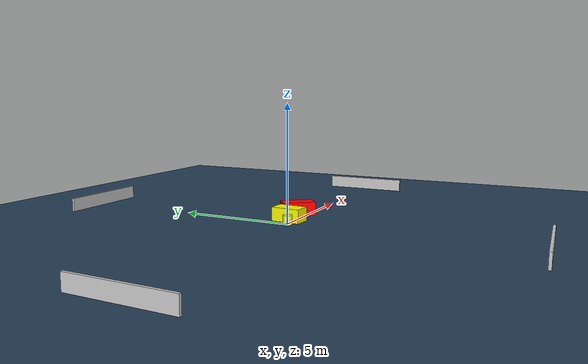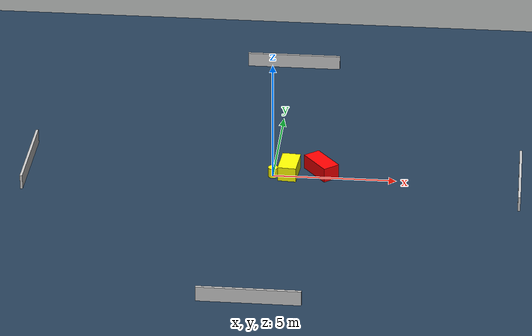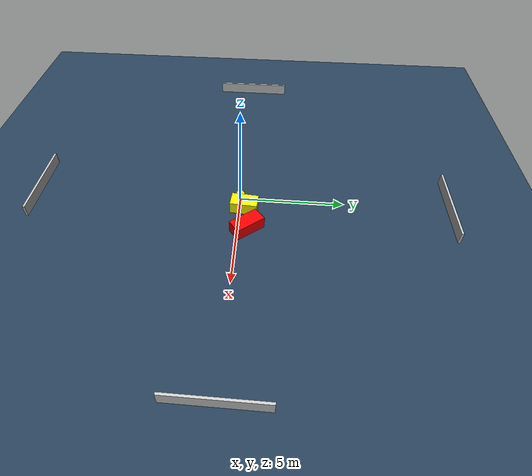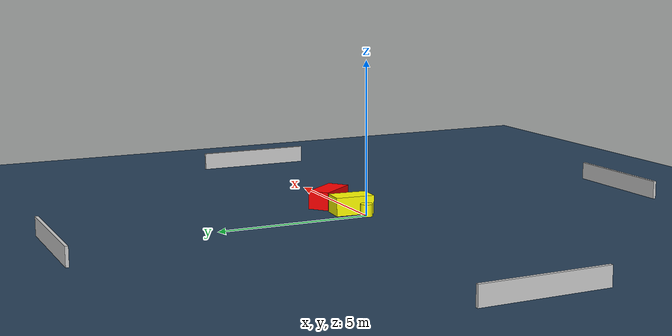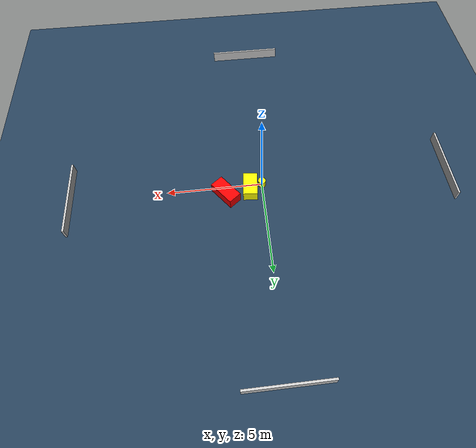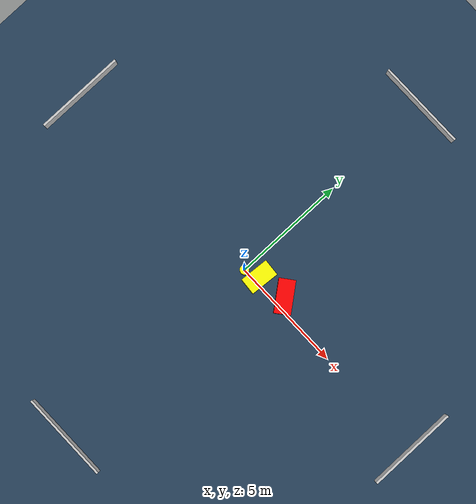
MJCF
<?xml version="1.0" ?>
<mujoco model="generated_environment">
  <option timestep="0.01" integrator="RK4" cone="elliptic"/>
  <default>
    <geom density="1"/>
  </default>
  <asset>
    <texture builtin="gradient" height="3072" name="skybox" rgb1="0.3 0.5 0.7" rgb2="0 0 0" type="skybox" width="512"/>
    <texture builtin="checker" height="300" name="groundplane" rgb1="0.2 0.3 0.4" rgb2="0.1 0.2 0.3" type="2d" width="300"/>
    <material name="groundplane" reflectance="0.2" texrepeat="5 5" texture="groundplane"/>
  </asset>
  <worldbody>
    <light dir="0 0 -1" directional="true" pos="0 0 1.5"/>
    <geom condim="3" friction="0.5 0.005 0.001" material="groundplane" name="floor" pos="0 0 0" size="0 0 0.05" type="plane"/>
    <body name="walls">
      <geom name="wall_1" condim="4" pos="-10.0 0.0 0.3" rgba="0.800000011920929 0.800000011920929 0.800000011920929 1.0" size="0.05 2.0 0.3" type="box"/>
      <geom name="wall_2" condim="4" pos="10.0 0.0 0.3" rgba="0.800000011920929 0.800000011920929 0.800000011920929 1.0" size="0.05 2.0 0.3" type="box"/>
      <geom name="wall_3" condim="4" pos="0.0 -10.0 0.3" rgba="0.800000011920929 0.800000011920929 0.800000011920929 1.0" size="2.0 0.05 0.3" type="box"/>
      <geom name="wall_4" condim="4" pos="0.0 10.0 0.3" rgba="0.800000011920929 0.800000011920929 0.800000011920929 1.0" size="2.0 0.05 0.3" type="box"/>
    </body>
    <body name="robot">
      <joint name="joint_x" type="slide" pos="0 0 0" axis="1 0 0"/>
      <joint name="joint_y" type="slide" pos="0 0 0" axis="0 1 0"/>
      <geom name="robot" type="cylinder" pos="0.0 0.0 0.2" size="0.2 0.2 0.0" mass="5.0" friction="1.0 0.005 0.0001" condim="4" rgba="1.0 1.0 0.0 1.0"/>
    </body>
    <body name="obstacle_1_movable">
      <geom name="obstacle_1_movable" condim="4" pos="0.639750654779939 0.23737502488587942 0.3" euler="0 0 355.63681008802826" friction="0.0 0.005 0.001" rgba="1.0 1.0 0.0 1.0" size="0.37371334534107503 0.6389255439577504 0.3" type="box" mass="0.1"/>
      <joint type="free"/>
    </body>
    <body name="obstacle_2_static">
      <geom name="obstacle_2_static" condim="4" pos="1.9363006715303432 0.45139245444114223 0.3" euler="0 0 128.1783150988255" friction="0.0 0.005 0.001" rgba="1.0 0.0 0.0 1.0" size="0.7327183839370139 0.3577901551343945 0.3" type="box"/>
    </body>
  </worldbody>
  <actuator>
    <motor name="actuator_x" joint="joint_x" gear="1" ctrlrange="-1 1"/>
    <motor name="actuator_y" joint="joint_y" gear="1" ctrlrange="-1 1"/>
  </actuator>
</mujoco>
